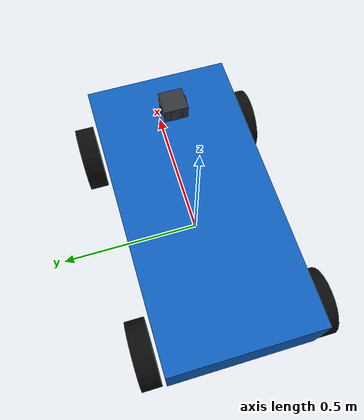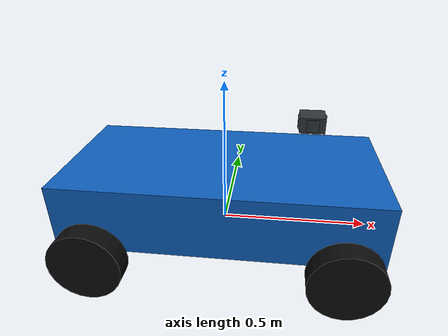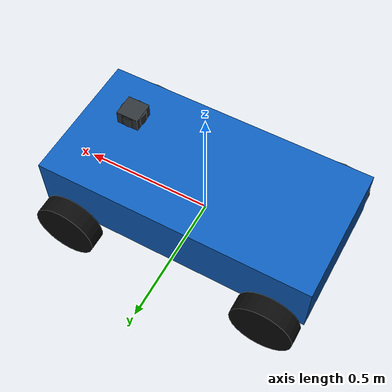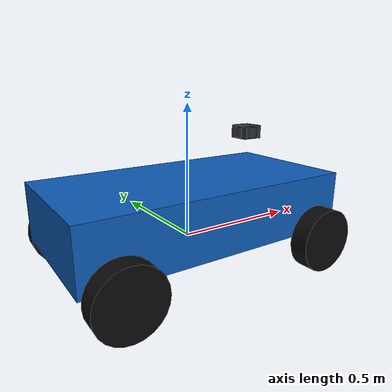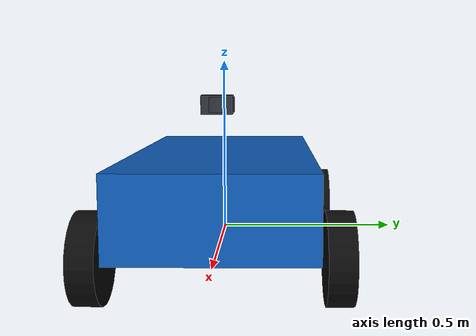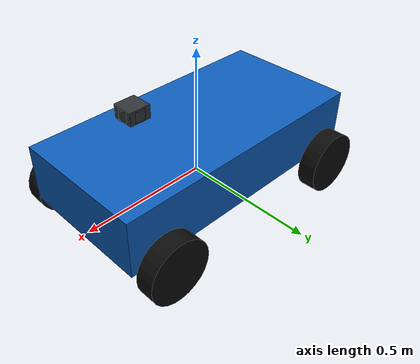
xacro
<?xml version="1.0"?>
<robot xmlns:xacro="http://www.ros.org/wiki/xacro" name="course_ackermann">
  <!-- SI units; x forward, y left, z up (REP-103). -->
  <xacro:arg name="base_length" default="1.05"/>
  <xacro:arg name="base_width" default="0.52"/>
  <xacro:arg name="body_height" default="0.22"/>
  <xacro:arg name="body_z" default="0.12"/>
  <xacro:arg name="wheelbase" default="0.8"/>
  <xacro:arg name="track" default="0.62"/>
  <xacro:arg name="wheel_radius" default="0.12"/>
  <xacro:arg name="wheel_width" default="0.07"/>
  <xacro:arg name="sensor_x" default="0.28"/>
  <xacro:arg name="sensor_z" default="0.38"/>

  <xacro:property name="base_length" value="$(arg base_length)"/>
  <xacro:property name="base_width" value="$(arg base_width)"/>
  <xacro:property name="body_height" value="$(arg body_height)"/>
  <xacro:property name="body_z" value="$(arg body_z)"/>
  <xacro:property name="wheelbase" value="$(arg wheelbase)"/>
  <xacro:property name="track" value="$(arg track)"/>
  <xacro:property name="wheel_radius" value="$(arg wheel_radius)"/>
  <xacro:property name="wheel_width" value="$(arg wheel_width)"/>
  <xacro:property name="sensor_x" value="$(arg sensor_x)"/>
  <xacro:property name="sensor_z" value="$(arg sensor_z)"/>

  <material name="body_blue"><color rgba="0.05 0.36 0.72 1"/></material>
  <material name="rubber"><color rgba="0.04 0.04 0.04 1"/></material>
  <material name="sensor_dark"><color rgba="0.18 0.2 0.22 1"/></material>

  <link name="base_link">
    <inertial>
      <origin xyz="0 0 ${body_z}"/>
      <mass value="12.0"/>
      <inertia ixx="0.55" ixy="0" ixz="0" iyy="1.10" iyz="0" izz="1.40"/>
    </inertial>
    <visual>
      <origin xyz="0 0 ${body_z}"/>
      <geometry><box size="${base_length} ${base_width} ${body_height}"/></geometry>
      <material name="body_blue"/>
    </visual>
    <collision>
      <origin xyz="0 0 ${body_z}"/>
      <geometry><box size="${base_length} ${base_width} ${body_height}"/></geometry>
    </collision>
  </link>

  <link name="camera_link">
    <inertial><mass value="0.033333333333"/><inertia ixx="0.000333333333" ixy="0" ixz="0" iyy="0.000333333333" iyz="0" izz="0.000333333333"/></inertial>
    <visual><geometry><box size="0.08 0.08 0.05"/></geometry><material name="sensor_dark"/></visual>
    <collision><geometry><box size="0.08 0.08 0.05"/></geometry></collision>
  </link>
  <joint name="camera_joint" type="fixed">
    <parent link="base_link"/><child link="camera_link"/>
    <origin xyz="${sensor_x} 0 ${sensor_z}" rpy="0 0 0"/>
  </joint>

  <link name="lidar_link">
    <inertial><mass value="0.033333333333"/><inertia ixx="0.000333333333" ixy="0" ixz="0" iyy="0.000333333333" iyz="0" izz="0.000333333333"/></inertial>
    <visual><geometry><cylinder radius="0.045" length="0.04"/></geometry><material name="sensor_dark"/></visual>
    <collision><geometry><cylinder radius="0.045" length="0.04"/></geometry></collision>
  </link>
  <joint name="lidar_joint" type="fixed">
    <parent link="base_link"/><child link="lidar_link"/>
    <origin xyz="${sensor_x} 0 ${sensor_z}" rpy="0 0 0"/>
  </joint>

  <link name="imu_link">
    <inertial><mass value="0.033333333334"/><inertia ixx="0.000333333334" ixy="0" ixz="0" iyy="0.000333333334" iyz="0" izz="0.000333333334"/></inertial>
    <visual><geometry><box size="0.04 0.03 0.015"/></geometry><material name="sensor_dark"/></visual>
    <collision><geometry><box size="0.04 0.03 0.015"/></geometry></collision>
  </link>
  <joint name="imu_joint" type="fixed">
    <parent link="base_link"/><child link="imu_link"/>
    <origin xyz="${sensor_x} 0 ${sensor_z}" rpy="0 0 0"/>
  </joint>

  <!-- Cylinder axes are rotated onto REP-103's lateral y axis. -->
  <xacro:macro name="wheel" params="side x_pos y_pos">
    <link name="${side}_wheel">
      <inertial>
        <mass value="0.8"/>
        <inertia ixx="0.0032067" ixy="0" ixz="0" iyy="0.00576" iyz="0" izz="0.0032067"/>
      </inertial>
      <visual><origin rpy="1.57079632679 0 0"/><geometry><cylinder radius="${wheel_radius}" length="${wheel_width}"/></geometry><material name="rubber"/></visual>
      <collision><origin rpy="1.57079632679 0 0"/><geometry><cylinder radius="${wheel_radius}" length="${wheel_width}"/></geometry></collision>
    </link>
    <joint name="${side}_wheel_joint" type="continuous">
      <parent link="base_link"/><child link="${side}_wheel"/>
      <origin xyz="${x_pos} ${y_pos} 0" rpy="0 0 0"/>
      <axis xyz="0 1 0"/>
    </joint>
  </xacro:macro>

  <xacro:wheel side="front_left" x_pos="${wheelbase / 2}" y_pos="${track / 2}"/>
  <xacro:wheel side="front_right" x_pos="${wheelbase / 2}" y_pos="${-track / 2}"/>
  <xacro:wheel side="rear_left" x_pos="${-wheelbase / 2}" y_pos="${track / 2}"/>
  <xacro:wheel side="rear_right" x_pos="${-wheelbase / 2}" y_pos="${-track / 2}"/>
</robot>
